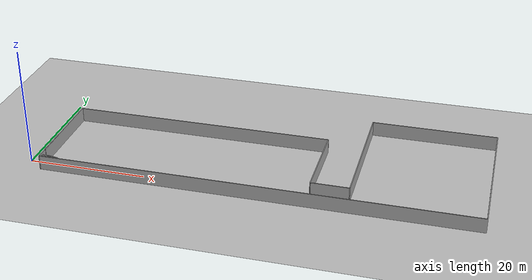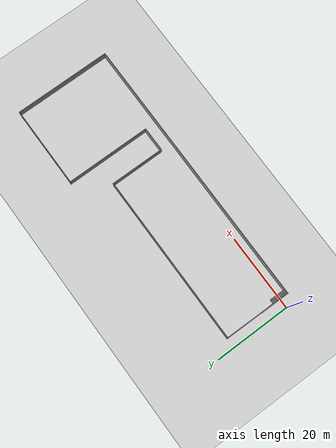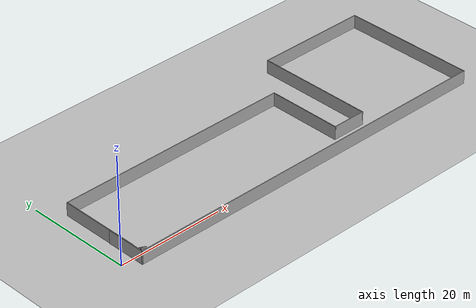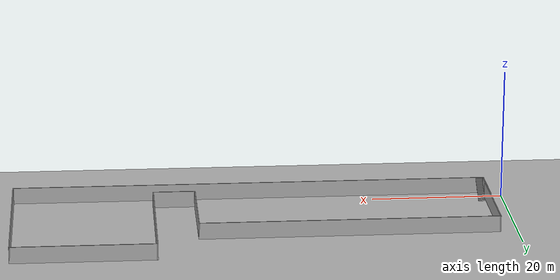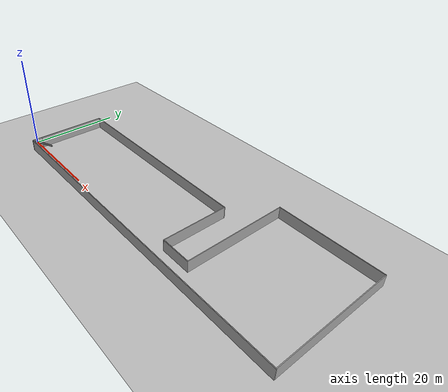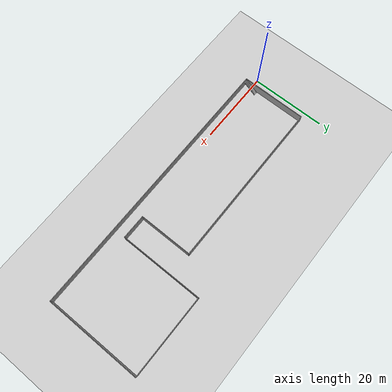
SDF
<sdf version="1.7">
 <world name="default">
  <light name="sun" type="directional">
   <pose>0 0 10 0 -0 0</pose>
   <diffuse>0.8 0.8 0.8 1</diffuse>
   <specular>0.2 0.2 0.2 1</specular>
   <attenuation>
    <range>1000</range>
    <constant>0.9</constant>
    <linear>0.01</linear>
    <quadratic>0.001</quadratic>
   </attenuation>
   <direction>-0.5 0.1 -0.9</direction>
   <spot><inner_angle>0</inner_angle><outer_angle>0</outer_angle><falloff>0</falloff></spot>
  </light>
  <model name="ground_plane">
   <static>1</static>
   <link name="link">
    <collision name="collision">
     <geometry><plane><normal>0 0 1</normal><size>100 100</size></plane></geometry>
     <surface><friction><ode><mu>100</mu><mu2>50</mu2></ode></friction></surface>
    </collision>
    <visual name="visual">
     <cast_shadows>0</cast_shadows>
     <geometry><plane><normal>0 0 1</normal><size>100 100</size></plane></geometry>
     <material>
      <script><uri>file://media/materials/scripts/gazebo.material</uri><name>Gazebo/Grey</name></script>
     </material>
    </visual>
   </link>
  </model>
  <gravity>0 0 -9.8</gravity>
  <magnetic_field>6e-06 2.3e-05 -4.2e-05</magnetic_field>
  <atmosphere type="adiabatic"/>
  <physics type="ode">
   <max_step_size>0.001</max_step_size>
   <real_time_factor>1</real_time_factor>
   <real_time_update_rate>1000</real_time_update_rate>
  </physics>
  <scene><ambient>0.4 0.4 0.4 1</ambient><background>0.7 0.7 0.7 1</background><shadows>1</shadows></scene>
  <spherical_coordinates>
   <surface_model>EARTH_WGS84</surface_model>
   <latitude_deg>0</latitude_deg>
   <longitude_deg>0</longitude_deg>
   <elevation>0</elevation>
   <heading_deg>0</heading_deg>
  </spherical_coordinates>
  <model name="Thirdworld">
   <pose>37.6264 10.7812 0 0 -0 0</pose>
   <link name="Stairs_0">
    <visual name="Stairs_0_Visual_0">
     <pose>-34.2959 -8.93893 0.083333 0 -0 0</pose>
     <geometry><box><size>1 0.233333 0.166667</size></box></geometry>
     <material>
      <script><uri>file://media/materials/scripts/gazebo.material</uri><name>Gazebo/Grey</name></script>
      <ambient>1 1 1 1</ambient>
     </material>
     <meta><layer>0</layer></meta>
    </visual>
    <collision name="Stairs_0_Collision_0">
     <geometry><box><size>1 0.233333 0.166667</size></box></geometry>
     <pose>-34.2959 -8.93893 0.083333 0 -0 0</pose>
    </collision>
    <visual name="Stairs_0_Visual_1">
     <pose>-34.2959 -9.17226 0.25 0 -0 0</pose>
     <geometry><box><size>1 0.233333 0.166667</size></box></geometry>
     <material>
      <script><uri>file://media/materials/scripts/gazebo.material</uri><name>Gazebo/Grey</name></script>
      <ambient>1 1 1 1</ambient>
     </material>
     <meta><layer>0</layer></meta>
    </visual>
    <collision name="Stairs_0_Collision_1">
     <geometry><box><size>1 0.233333 0.166667</size></box></geometry>
     <pose>-34.2959 -9.17226 0.25 0 -0 0</pose>
    </collision>
    <visual name="Stairs_0_Visual_2">
     <pose>-34.2959 -9.4056 0.416667 0 -0 0</pose>
     <geometry><box><size>1 0.233333 0.166667</size></box></geometry>
     <material>
      <script><uri>file://media/materials/scripts/gazebo.material</uri><name>Gazebo/Grey</name></script>
      <ambient>1 1 1 1</ambient>
     </material>
     <meta><layer>0</layer></meta>
    </visual>
    <collision name="Stairs_0_Collision_2">
     <geometry><box><size>1 0.233333 0.166667</size></box></geometry>
     <pose>-34.2959 -9.4056 0.416667 0 -0 0</pose>
    </collision>
    <visual name="Stairs_0_Visual_3">
     <pose>-34.2959 -9.63893 0.583333 0 -0 0</pose>
     <geometry><box><size>1 0.233333 0.166667</size></box></geometry>
     <material>
      <script><uri>file://media/materials/scripts/gazebo.material</uri><name>Gazebo/Grey</name></script>
      <ambient>1 1 1 1</ambient>
     </material>
     <meta><layer>0</layer></meta>
    </visual>
    <collision name="Stairs_0_Collision_3">
     <geometry><box><size>1 0.233333 0.166667</size></box></geometry>
     <pose>-34.2959 -9.63893 0.583333 0 -0 0</pose>
    </collision>
    <visual name="Stairs_0_Visual_4">
     <pose>-34.2959 -9.87226 0.75 0 -0 0</pose>
     <geometry><box><size>1 0.233333 0.166667</size></box></geometry>
     <material>
      <script><uri>file://media/materials/scripts/gazebo.material</uri><name>Gazebo/Grey</name></script>
      <ambient>1 1 1 1</ambient>
     </material>
     <meta><layer>0</layer></meta>
    </visual>
    <collision name="Stairs_0_Collision_4">
     <geometry><box><size>1 0.233333 0.166667</size></box></geometry>
     <pose>-34.2959 -9.87226 0.75 0 -0 0</pose>
    </collision>
    <visual name="Stairs_0_Visual_5">
     <pose>-34.2959 -10.1056 0.916667 0 -0 0</pose>
     <geometry><box><size>1 0.233333 0.166667</size></box></geometry>
     <material>
      <script><uri>file://media/materials/scripts/gazebo.material</uri><name>Gazebo/Grey</name></script>
      <ambient>1 1 1 1</ambient>
     </material>
     <meta><layer>0</layer></meta>
    </visual>
    <collision name="Stairs_0_Collision_5">
     <geometry><box><size>1 0.233333 0.166667</size></box></geometry>
     <pose>-34.2959 -10.1056 0.916667 0 -0 0</pose>
    </collision>
    <visual name="Stairs_0_Visual_6">
     <pose>-34.2959 -10.3389 1.08333 0 -0 0</pose>
     <geometry><box><size>1 0.233333 0.166667</size></box></geometry>
     <material>
      <script><uri>file://media/materials/scripts/gazebo.material</uri><name>Gazebo/Grey</name></script>
      <ambient>1 1 1 1</ambient>
     </material>
     <meta><layer>0</layer></meta>
    </visual>
    <collision name="Stairs_0_Collision_6">
     <geometry><box><size>1 0.233333 0.166667</size></box></geometry>
     <pose>-34.2959 -10.3389 1.08333 0 -0 0</pose>
    </collision>
    <visual name="Stairs_0_Visual_7">
     <pose>-34.2959 -10.5723 1.25 0 -0 0</pose>
     <geometry><box><size>1 0.233333 0.166667</size></box></geometry>
     <material>
      <script><uri>file://media/materials/scripts/gazebo.material</uri><name>Gazebo/Grey</name></script>
      <ambient>1 1 1 1</ambient>
     </material>
     <meta><layer>0</layer></meta>
    </visual>
    <collision name="Stairs_0_Collision_7">
     <geometry><box><size>1 0.233333 0.166667</size></box></geometry>
     <pose>-34.2959 -10.5723 1.25 0 -0 0</pose>
    </collision>
    <visual name="Stairs_0_Visual_8">
     <pose>-34.2959 -10.8056 1.41667 0 -0 0</pose>
     <geometry><box><size>1 0.233333 0.166667</size></box></geometry>
     <material>
      <script><uri>file://media/materials/scripts/gazebo.material</uri><name>Gazebo/Grey</name></script>
      <ambient>1 1 1 1</ambient>
     </material>
     <meta><layer>0</layer></meta>
    </visual>
    <collision name="Stairs_0_Collision_8">
     <geometry><box><size>1 0.233333 0.166667</size></box></geometry>
     <pose>-34.2959 -10.8056 1.41667 0 -0 0</pose>
    </collision>
    <visual name="Stairs_0_Visual_9">
     <pose>-34.2959 -11.0389 1.58333 0 -0 0</pose>
     <geometry><box><size>1 0.233333 0.166667</size></box></geometry>
     <material>
      <script><uri>file://media/materials/scripts/gazebo.material</uri><name>Gazebo/Grey</name></script>
      <ambient>1 1 1 1</ambient>
     </material>
     <meta><layer>0</layer></meta>
    </visual>
    <collision name="Stairs_0_Collision_9">
     <geometry><box><size>1 0.233333 0.166667</size></box></geometry>
     <pose>-34.2959 -11.0389 1.58333 0 -0 0</pose>
    </collision>
    <visual name="Stairs_0_Visual_10">
     <pose>-34.2959 -11.2723 1.75 0 -0 0</pose>
     <geometry><box><size>1 0.233333 0.166667</size></box></geometry>
     <material>
      <script><uri>file://media/materials/scripts/gazebo.material</uri><name>Gazebo/Grey</name></script>
      <ambient>1 1 1 1</ambient>
     </material>
     <meta><layer>0</layer></meta>
    </visual>
    <collision name="Stairs_0_Collision_10">
     <geometry><box><size>1 0.233333 0.166667</size></box></geometry>
     <pose>-34.2959 -11.2723 1.75 0 -0 0</pose>
    </collision>
    <visual name="Stairs_0_Visual_11">
     <pose>-34.2959 -11.5056 1.91667 0 -0 0</pose>
     <geometry><box><size>1 0.233333 0.166667</size></box></geometry>
     <material>
      <script><uri>file://media/materials/scripts/gazebo.material</uri><name>Gazebo/Grey</name></script>
      <ambient>1 1 1 1</ambient>
     </material>
     <meta><layer>0</layer></meta>
    </visual>
    <collision name="Stairs_0_Collision_11">
     <geometry><box><size>1 0.233333 0.166667</size></box></geometry>
     <pose>-34.2959 -11.5056 1.91667 0 -0 0</pose>
    </collision>
    <visual name="Stairs_0_Visual_12">
     <pose>-34.2959 -11.7389 2.08333 0 -0 0</pose>
     <geometry><box><size>1 0.233333 0.166667</size></box></geometry>
     <material>
      <script><uri>file://media/materials/scripts/gazebo.material</uri><name>Gazebo/Grey</name></script>
      <ambient>1 1 1 1</ambient>
     </material>
     <meta><layer>0</layer></meta>
    </visual>
    <collision name="Stairs_0_Collision_12">
     <geometry><box><size>1 0.233333 0.166667</size></box></geometry>
     <pose>-34.2959 -11.7389 2.08333 0 -0 0</pose>
    </collision>
    <visual name="Stairs_0_Visual_13">
     <pose>-34.2959 -11.9723 2.25 0 -0 0</pose>
     <geometry><box><size>1 0.233333 0.166667</size></box></geometry>
     <material>
      <script><uri>file://media/materials/scripts/gazebo.material</uri><name>Gazebo/Grey</name></script>
      <ambient>1 1 1 1</ambient>
     </material>
     <meta><layer>0</layer></meta>
    </visual>
    <collision name="Stairs_0_Collision_13">
     <geometry><box><size>1 0.233333 0.166667</size></box></geometry>
     <pose>-34.2959 -11.9723 2.25 0 -0 0</pose>
    </collision>
    <visual name="Stairs_0_Visual_14">
     <pose>-34.2959 -12.2056 2.41667 0 -0 0</pose>
     <geometry><box><size>1 0.233333 0.166667</size></box></geometry>
     <material>
      <script><uri>file://media/materials/scripts/gazebo.material</uri><name>Gazebo/Grey</name></script>
      <ambient>1 1 1 1</ambient>
     </material>
     <meta><layer>0</layer></meta>
    </visual>
    <collision name="Stairs_0_Collision_14">
     <geometry><box><size>1 0.233333 0.166667</size></box></geometry>
     <pose>-34.2959 -12.2056 2.41667 0 -0 0</pose>
    </collision>
   </link>
   <link name="Wall_10">
    <collision name="Wall_10_Collision">
     <geometry><box><size>7.5 0.15 2.5</size></box></geometry>
     <pose>0 0 1.25 0 -0 0</pose>
    </collision>
    <visual name="Wall_10_Visual">
     <pose>0 0 1.25 0 -0 0</pose>
     <geometry><box><size>7.5 0.15 2.5</size></box></geometry>
     <material>
      <script><uri>file://media/materials/scripts/gazebo.material</uri><name>Gazebo/Grey</name></script>
      <ambient>1 1 1 1</ambient>
     </material>
     <meta><layer>0</layer></meta>
    </visual>
    <pose>-35.0486 -9 0 0 -0 1.5708</pose>
   </link>
   <link name="Wall_2">
    <collision name="Wall_2_Collision">
     <geometry><box><size>15.25 0.15 2.5</size></box></geometry>
     <pose>0 0 1.25 0 -0 0</pose>
    </collision>
    <visual name="Wall_2_Visual">
     <pose>0 0 1.25 0 -0 0</pose>
     <geometry><box><size>15.25 0.15 2.5</size></box></geometry>
     <material>
      <script><uri>file://media/materials/scripts/gazebo.material</uri><name>Gazebo/Grey</name></script>
      <ambient>1 1 1 1</ambient>
     </material>
     <meta><layer>0</layer></meta>
    </visual>
    <pose>-34.9986 -2.875 0 0 -0 1.5708</pose>
   </link>
   <link name="Wall_3">
    <collision name="Wall_3_Collision">
     <geometry><box><size>45 0.15 2.5</size></box></geometry>
     <pose>0 0 1.25 0 -0 0</pose>
    </collision>
    <visual name="Wall_3_Visual">
     <pose>0 0 1.25 0 -0 0</pose>
     <geometry><box><size>45 0.15 2.5</size></box></geometry>
     <material>
      <script><uri>file://media/materials/scripts/gazebo.material</uri><name>Gazebo/Grey</name></script>
      <ambient>1 1 1 1</ambient>
     </material>
     <meta><layer>0</layer></meta>
    </visual>
    <pose>-12.5736 4.675 0 0 -0 0</pose>
   </link>
   <link name="Wall_4">
    <collision name="Wall_4_Collision">
     <geometry><box><size>14.25 0.15 2.5</size></box></geometry>
     <pose>0 0 1.25 0 -0 0</pose>
    </collision>
    <visual name="Wall_4_Visual">
     <pose>0 0 1.25 0 -0 0</pose>
     <geometry><box><size>14.25 0.15 2.5</size></box></geometry>
     <material>
      <script><uri>file://media/materials/scripts/gazebo.material</uri><name>Gazebo/Grey</name></script>
      <ambient>1 1 1 1</ambient>
     </material>
     <meta><layer>0</layer></meta>
    </visual>
    <pose>9.85137 -2.375 0 0 -0 -1.5708</pose>
   </link>
   <link name="Wall_5">
    <collision name="Wall_5_Collision">
     <geometry><box><size>6.5 0.15 2.5</size></box></geometry>
     <pose>0 0 1.25 0 -0 0</pose>
    </collision>
    <visual name="Wall_5_Visual">
     <pose>0 0 1.25 0 -0 0</pose>
     <geometry><box><size>6.5 0.15 2.5</size></box></geometry>
     <material>
      <script><uri>file://media/materials/scripts/gazebo.material</uri><name>Gazebo/Grey</name></script>
      <ambient>1 1 1 1</ambient>
     </material>
     <meta><layer>0</layer></meta>
    </visual>
    <pose>13.0264 -9.425 0 0 -0 0</pose>
   </link>
   <link name="Wall_6">
    <collision name="Wall_6_Collision">
     <geometry><box><size>22.25 0.15 2.5</size></box></geometry>
     <pose>0 0 1.25 0 -0 0</pose>
    </collision>
    <visual name="Wall_6_Visual">
     <pose>0 0 1.25 0 -0 0</pose>
     <geometry><box><size>22.25 0.15 2.5</size></box></geometry>
     <material>
      <script><uri>file://media/materials/scripts/gazebo.material</uri><name>Gazebo/Grey</name></script>
      <ambient>1 1 1 1</ambient>
     </material>
     <meta><layer>0</layer></meta>
    </visual>
    <pose>16.2014 1.625 0 0 -0 1.5708</pose>
   </link>
   <link name="Wall_7">
    <collision name="Wall_7_Collision">
     <geometry><box><size>21.5 0.15 2.5</size></box></geometry>
     <pose>0 0 1.25 0 -0 0</pose>
    </collision>
    <visual name="Wall_7_Visual">
     <pose>0 0 1.25 0 -0 0</pose>
     <geometry><box><size>21.5 0.15 2.5</size></box></geometry>
     <material>
      <script><uri>file://media/materials/scripts/gazebo.material</uri><name>Gazebo/Grey</name></script>
      <ambient>1 1 1 1</ambient>
     </material>
     <meta><layer>0</layer></meta>
    </visual>
    <pose>26.8764 12.675 0 0 -0 0</pose>
   </link>
   <link name="Wall_8">
    <collision name="Wall_8_Collision">
     <geometry><box><size>25.5 0.15 2.5</size></box></geometry>
     <pose>0 0 1.25 0 -0 0</pose>
    </collision>
    <visual name="Wall_8_Visual">
     <pose>0 0 1.25 0 -0 0</pose>
     <geometry><box><size>25.5 0.15 2.5</size></box></geometry>
     <material>
      <script><uri>file://media/materials/scripts/gazebo.material</uri><name>Gazebo/Grey</name></script>
      <ambient>1 1 1 1</ambient>
     </material>
     <meta><layer>0</layer></meta>
    </visual>
    <pose>37.5514 0 0 0 -0 -1.5708</pose>
   </link>
   <link name="Wall_9">
    <collision name="Wall_9_Collision">
     <geometry><box><size>72.75 0.15 2.5</size></box></geometry>
     <pose>0 0 1.25 0 -0 0</pose>
    </collision>
    <visual name="Wall_9_Visual">
     <pose>0 0 1.25 0 -0 0</pose>
     <geometry><box><size>72.75 0.15 2.5</size></box></geometry>
     <material>
      <script><uri>file://media/materials/scripts/gazebo.material</uri><name>Gazebo/Grey</name></script>
      <ambient>1 1 1 1</ambient>
     </material>
     <meta><layer>0</layer></meta>
    </visual>
    <pose>1.25137 -12.675 0 0 -0 3.14159</pose>
   </link>
   <static>1</static>
  </model>
 </world>
</sdf>
